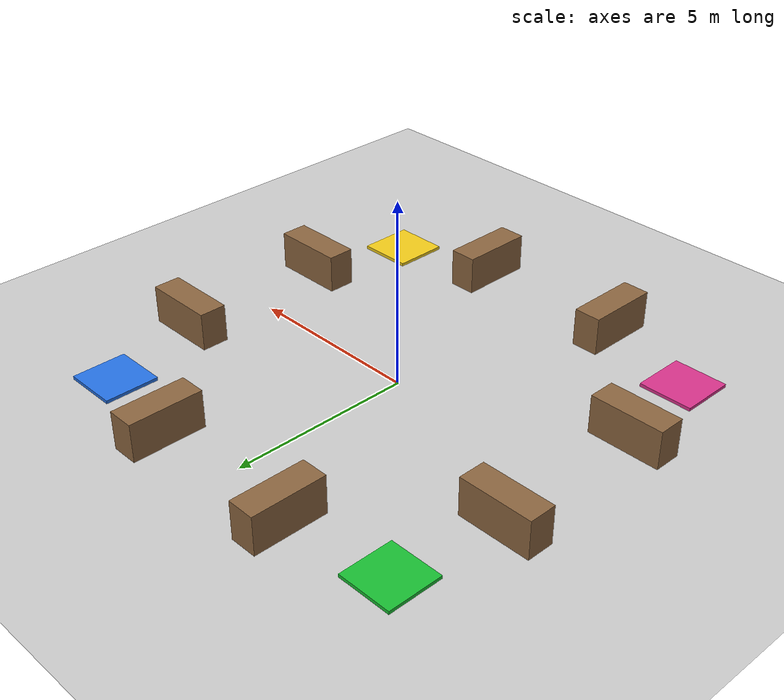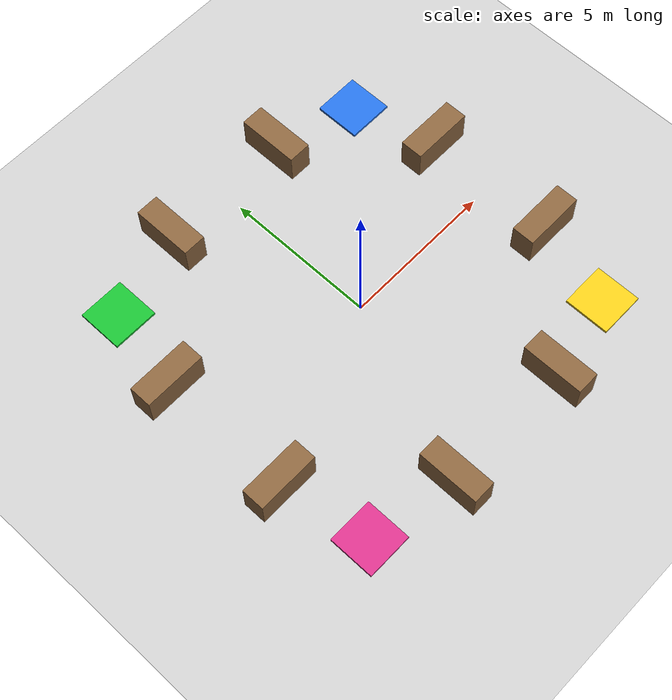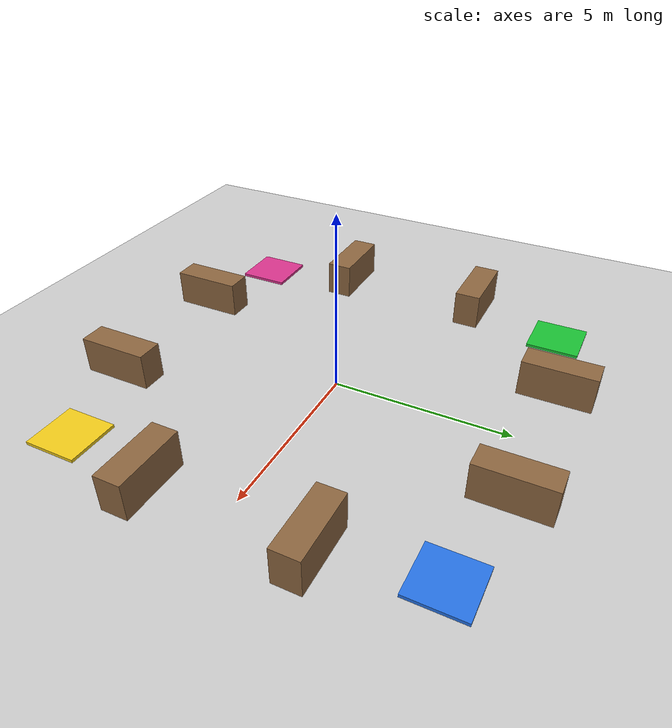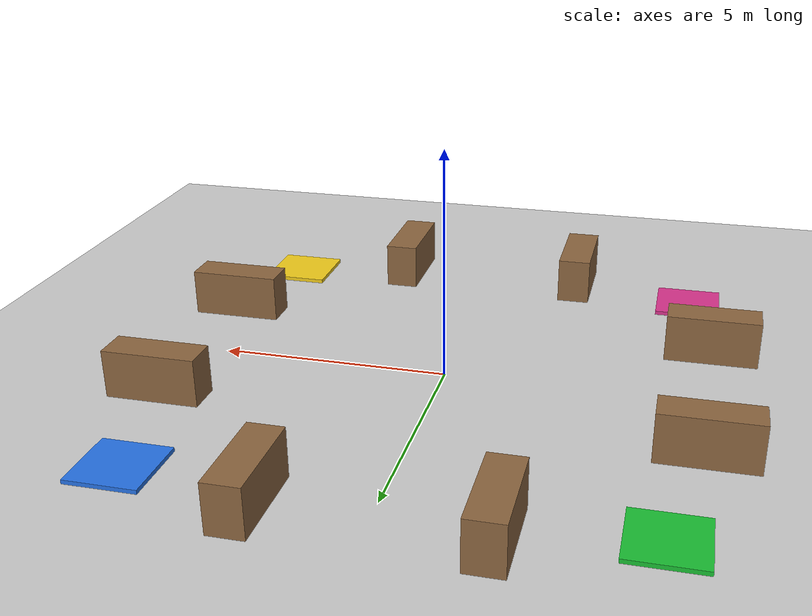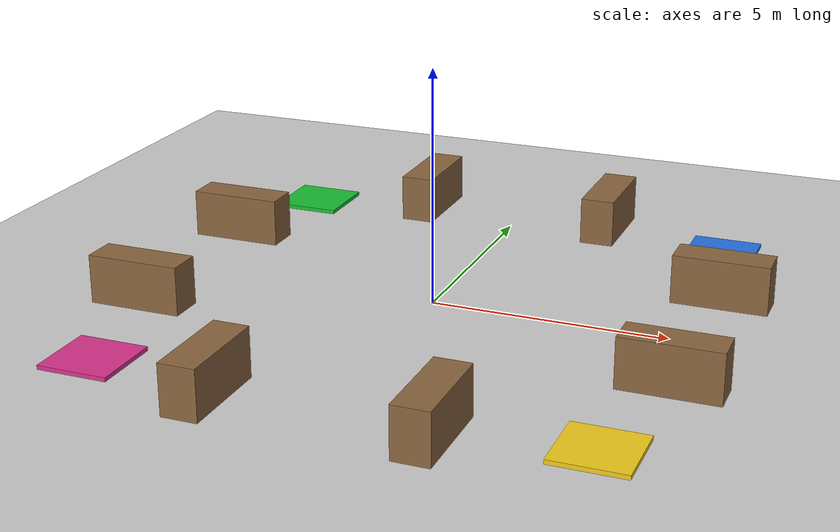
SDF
<sdf version="1.8">
 <world name="rooms">
  <scene><grid>false</grid></scene>
  <physics name="1ms" type="ignored">
   <max_step_size>0.002</max_step_size>
   <real_time_factor>1.0</real_time_factor>
  </physics>
  <plugin filename="libignition-gazebo-physics-system.so" name="ignition::gazebo::systems::Physics"/>
  <plugin filename="libignition-gazebo-sensors-system.so" name="ignition::gazebo::systems::Sensors">
   <render_engine>ogre</render_engine>
   <namespace>test</namespace>
  </plugin>
  <plugin filename="ignition-gazebo-imu-system" name="ignition::gazebo::systems::Imu"/>
  <plugin filename="libignition-gazebo-user-commands-system.so" name="ignition::gazebo::systems::UserCommands"/>
  <plugin filename="libignition-gazebo-scene-broadcaster-system.so" name="ignition::gazebo::systems::SceneBroadcaster"/>
  <light type="directional" name="sun">
   <cast_shadows>false</cast_shadows>
   <pose>0 0 10 0 0 0</pose>
   <diffuse>0.8 0.8 0.8 1</diffuse>
   <specular>0.2 0.2 0.2 1</specular>
   <attenuation>
    <range>1000</range>
    <constant>0.9</constant>
    <linear>0.01</linear>
    <quadratic>0.001</quadratic>
   </attenuation>
   <direction>-0.5 0.1 -0.9</direction>
  </light>
  <model name="ground_plane">
   <static>true</static>
   <link name="link">
    <collision name="collision"><geometry><plane><normal>0.0 0.0 1.0</normal></plane></geometry></collision>
    <visual name="visual">
     <geometry><plane><normal>0.0 0.0 1.0</normal><size>100 100</size></plane></geometry>
     <material>
      <ambient>0.8 0.8 0.8 1</ambient>
      <diffuse>0.8 0.8 0.8 1</diffuse>
      <specular>0.8 0.8 0.8 1</specular>
     </material>
    </visual>
   </link>
  </model>
  <model name="nw_south">
   <static>true</static>
   <pose>-5.5875 2.2000 0.5250 0 0 0.0000</pose>
   <link name="link">
    <collision name="c"><geometry><box><size>2.0250 0.7500 1.0500</size></box></geometry></collision>
    <visual name="v">
     <geometry><box><size>2.0250 0.7500 1.0500</size></box></geometry>
     <material>
      <ambient>0.550 0.400 0.250 1</ambient>
      <diffuse>0.550 0.400 0.250 1</diffuse>
      <specular>0.2 0.2 0.2 1</specular>
     </material>
    </visual>
   </link>
  </model>
  <model name="nw_east">
   <static>true</static>
   <pose>-2.2000 5.5875 0.5250 0 0 0.0000</pose>
   <link name="link">
    <collision name="c"><geometry><box><size>0.7500 2.0250 1.0500</size></box></geometry></collision>
    <visual name="v">
     <geometry><box><size>0.7500 2.0250 1.0500</size></box></geometry>
     <material>
      <ambient>0.550 0.400 0.250 1</ambient>
      <diffuse>0.550 0.400 0.250 1</diffuse>
      <specular>0.2 0.2 0.2 1</specular>
     </material>
    </visual>
   </link>
  </model>
  <model name="ne_south">
   <static>true</static>
   <pose>5.5875 2.2000 0.5250 0 0 0.0000</pose>
   <link name="link">
    <collision name="c"><geometry><box><size>2.0250 0.7500 1.0500</size></box></geometry></collision>
    <visual name="v">
     <geometry><box><size>2.0250 0.7500 1.0500</size></box></geometry>
     <material>
      <ambient>0.550 0.400 0.250 1</ambient>
      <diffuse>0.550 0.400 0.250 1</diffuse>
      <specular>0.2 0.2 0.2 1</specular>
     </material>
    </visual>
   </link>
  </model>
  <model name="ne_west">
   <static>true</static>
   <pose>2.2000 5.5875 0.5250 0 0 0.0000</pose>
   <link name="link">
    <collision name="c"><geometry><box><size>0.7500 2.0250 1.0500</size></box></geometry></collision>
    <visual name="v">
     <geometry><box><size>0.7500 2.0250 1.0500</size></box></geometry>
     <material>
      <ambient>0.550 0.400 0.250 1</ambient>
      <diffuse>0.550 0.400 0.250 1</diffuse>
      <specular>0.2 0.2 0.2 1</specular>
     </material>
    </visual>
   </link>
  </model>
  <model name="se_north">
   <static>true</static>
   <pose>5.5875 -2.2000 0.5250 0 0 0.0000</pose>
   <link name="link">
    <collision name="c"><geometry><box><size>2.0250 0.7500 1.0500</size></box></geometry></collision>
    <visual name="v">
     <geometry><box><size>2.0250 0.7500 1.0500</size></box></geometry>
     <material>
      <ambient>0.550 0.400 0.250 1</ambient>
      <diffuse>0.550 0.400 0.250 1</diffuse>
      <specular>0.2 0.2 0.2 1</specular>
     </material>
    </visual>
   </link>
  </model>
  <model name="se_west">
   <static>true</static>
   <pose>2.2000 -5.5875 0.5250 0 0 0.0000</pose>
   <link name="link">
    <collision name="c"><geometry><box><size>0.7500 2.0250 1.0500</size></box></geometry></collision>
    <visual name="v">
     <geometry><box><size>0.7500 2.0250 1.0500</size></box></geometry>
     <material>
      <ambient>0.550 0.400 0.250 1</ambient>
      <diffuse>0.550 0.400 0.250 1</diffuse>
      <specular>0.2 0.2 0.2 1</specular>
     </material>
    </visual>
   </link>
  </model>
  <model name="sw_north">
   <static>true</static>
   <pose>-5.5875 -2.2000 0.5250 0 0 0.0000</pose>
   <link name="link">
    <collision name="c"><geometry><box><size>2.0250 0.7500 1.0500</size></box></geometry></collision>
    <visual name="v">
     <geometry><box><size>2.0250 0.7500 1.0500</size></box></geometry>
     <material>
      <ambient>0.550 0.400 0.250 1</ambient>
      <diffuse>0.550 0.400 0.250 1</diffuse>
      <specular>0.2 0.2 0.2 1</specular>
     </material>
    </visual>
   </link>
  </model>
  <model name="sw_east">
   <static>true</static>
   <pose>-2.2000 -5.5875 0.5250 0 0 0.0000</pose>
   <link name="link">
    <collision name="c"><geometry><box><size>0.7500 2.0250 1.0500</size></box></geometry></collision>
    <visual name="v">
     <geometry><box><size>0.7500 2.0250 1.0500</size></box></geometry>
     <material>
      <ambient>0.550 0.400 0.250 1</ambient>
      <diffuse>0.550 0.400 0.250 1</diffuse>
      <specular>0.2 0.2 0.2 1</specular>
     </material>
    </visual>
   </link>
  </model>
  <model name="station_nw">
   <static>true</static>
   <pose>-5.0000 5.0000 0.0450 0 0 0.0000</pose>
   <link name="link">
    <visual name="v">
     <geometry><box><size>1.5000 1.5000 0.0900</size></box></geometry>
     <material>
      <ambient>0.100 0.750 0.200 1</ambient>
      <diffuse>0.100 0.750 0.200 1</diffuse>
      <specular>0.2 0.2 0.2 1</specular>
     </material>
    </visual>
   </link>
  </model>
  <model name="station_ne">
   <static>true</static>
   <pose>5.0000 5.0000 0.0450 0 0 0.0000</pose>
   <link name="link">
    <visual name="v">
     <geometry><box><size>1.5000 1.5000 0.0900</size></box></geometry>
     <material>
      <ambient>0.150 0.450 0.900 1</ambient>
      <diffuse>0.150 0.450 0.900 1</diffuse>
      <specular>0.2 0.2 0.2 1</specular>
     </material>
    </visual>
   </link>
  </model>
  <model name="station_se">
   <static>true</static>
   <pose>5.0000 -5.0000 0.0450 0 0 0.0000</pose>
   <link name="link">
    <visual name="v">
     <geometry><box><size>1.5000 1.5000 0.0900</size></box></geometry>
     <material>
      <ambient>0.950 0.800 0.100 1</ambient>
      <diffuse>0.950 0.800 0.100 1</diffuse>
      <specular>0.2 0.2 0.2 1</specular>
     </material>
    </visual>
   </link>
  </model>
  <model name="station_sw">
   <static>true</static>
   <pose>-5.0000 -5.0000 0.0450 0 0 0.0000</pose>
   <link name="link">
    <visual name="v">
     <geometry><box><size>1.5000 1.5000 0.0900</size></box></geometry>
     <material>
      <ambient>0.850 0.200 0.550 1</ambient>
      <diffuse>0.850 0.200 0.550 1</diffuse>
      <specular>0.2 0.2 0.2 1</specular>
     </material>
    </visual>
   </link>
  </model>
 </world>
</sdf>
